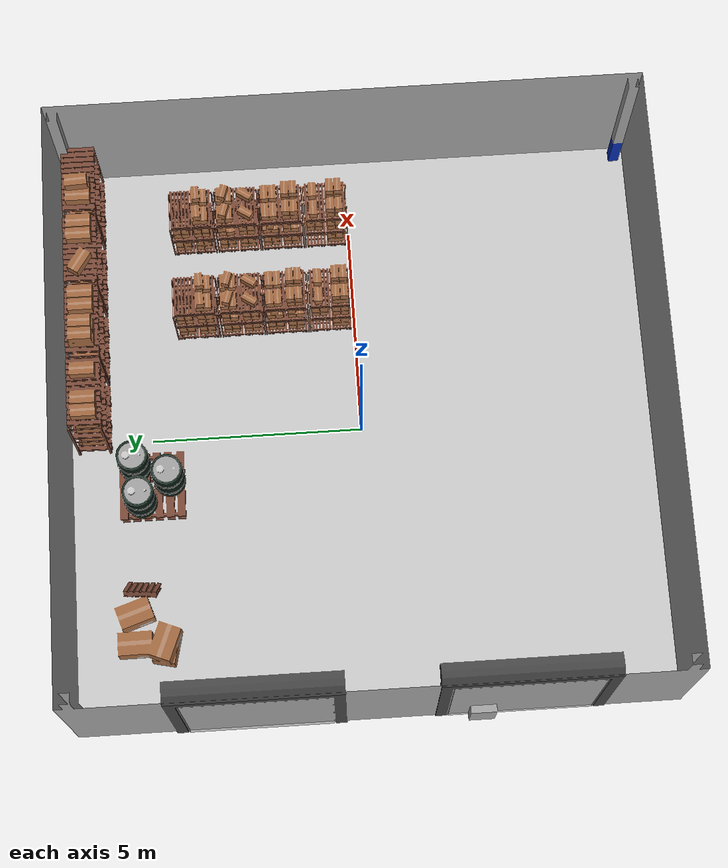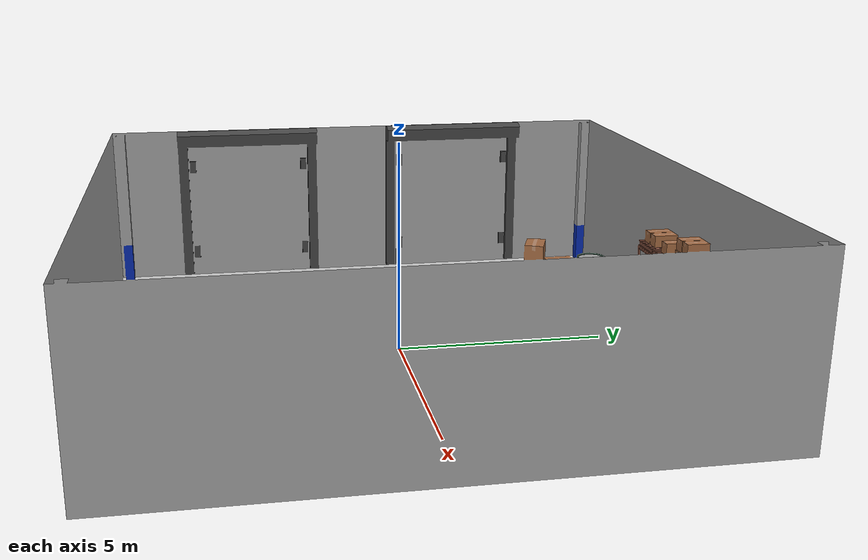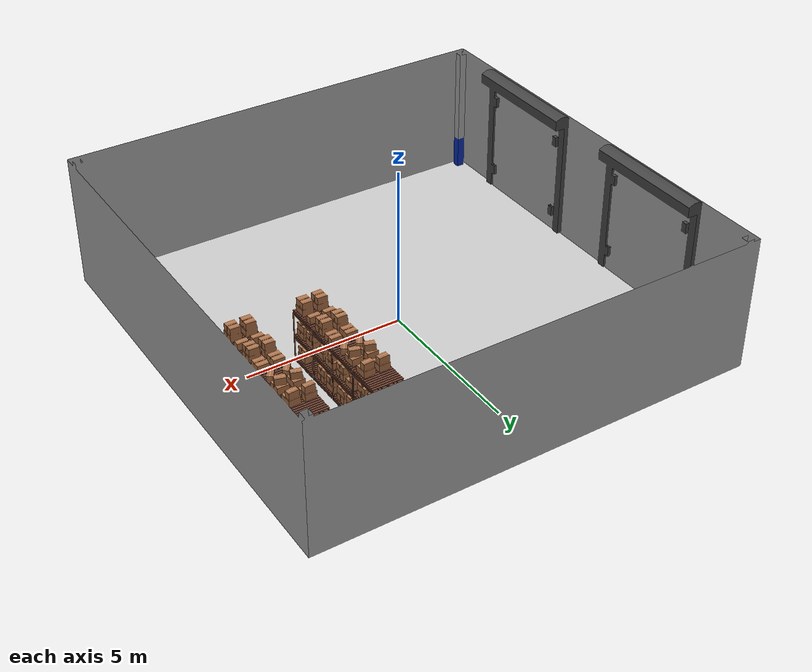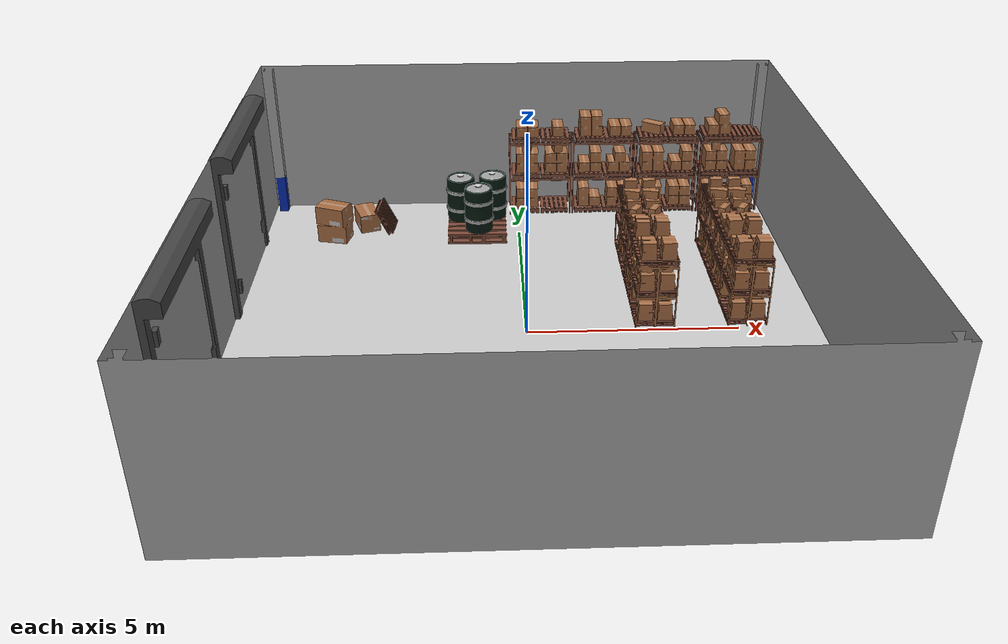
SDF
<?xml version="1.0" ?>
<sdf version='1.4'>
  <model name="warehouse_1">
      <static>1</static>
      <link name='link1'>
        <visual name='visual'>
          <geometry>
            <mesh>
              <uri>model://my_world/meshes/fetchit_env_version4.dae</uri>
              <scale>1 1 1</scale>
            </mesh>
          </geometry>
        </visual>
        <collision name='collision'>
          <laser_retro>0</laser_retro>
          <max_contacts>10</max_contacts>
          <pose frame=''>0 0 0 0 -0 0</pose>
          <geometry>
            <mesh>
              <uri>model://my_world/meshes/warehouse_collision.stl</uri>
              <scale>1 1 1</scale>
            </mesh>
          </geometry>
       </collision>

        <velocity_decay>
          <linear>0.000000</linear>
          <angular>0.000000</angular>
        </velocity_decay>
        <self_collide>0</self_collide>
        <kinematic>0</kinematic>
        <gravity>1</gravity>
      </link>
  </model>
</sdf>
